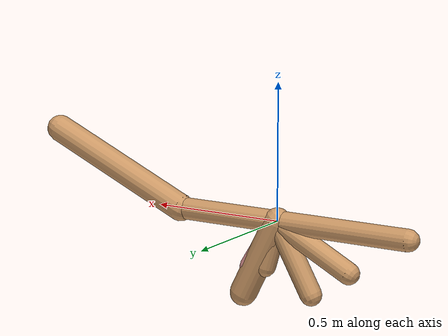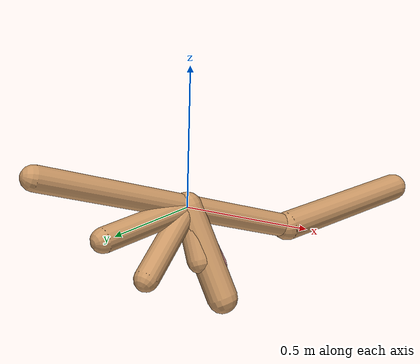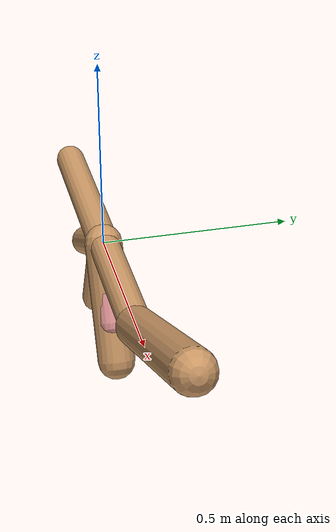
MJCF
<!-- converted to geom fromto version -->
<mujoco model="cheetah">
  <compiler angle="degree" coordinate="global" inertiafromgeom="true"/>
  <default>
    <joint armature=".1" damping=".01" limited="true" solimplimit="0 .8 .03" solreflimit=".02 1" stiffness="8"/>
    <geom conaffinity="0" condim="3" contype="1" friction="0.8 .1 .1" rgba="0.8 0.6 .4 1" solimp="0.0 0.8 0.01" solref="0.02 1"/>
    <motor ctrllimited="true" ctrlrange="-1 1"/>
  </default>
  <size nstack="300000" nuser_geom="1"/>
  <option gravity="0 0 -9.81" timestep="0.01"/>
  <worldbody>
    <body name="torso" pos="0 0 0.78">
      <joint armature="0" axis="1 0 0" damping="0" limited="false" name="ignorex" pos="0 0 0" stiffness="0" type="slide"/>
      <joint armature="0" axis="0 0 1" damping="0" limited="false" name="ignorez" pos="0 0 0" stiffness="0" type="slide"/>
      <joint armature="0" axis="0 1 0" damping="0" limited="false" name="ignorey" pos="0 0 0" stiffness="0" type="hinge"/>
      <geom fromto="-0.52 0 0 0.41 0 0" name="torso" size="0.04" type="capsule"/>
      <geom fromto="0.41 0 0 0.95 0 0.24" name="head" size="0.05" type="capsule"/>
      <body name="bthigh" pos="-0.52 0 0">
        <joint axis="0 1 0" damping="6" name="bthigh" pos="0 0 0" range="-30 60" stiffness="240" type="hinge"/>
        <geom fromto="0 0 0 0.14 0 -0.28" size="0.05" type="capsule"/>
        <body name="bshin" pos="0.14 0 -0.28">
          <joint axis="0 1 0" damping="4.5" name="bshin" pos="0 0 0" range="-45 45" stiffness="180" type="hinge"/>
          <geom fromto="0 0 0 -0.29 0 -0.15" size="0.04" type="capsule"/>
          <body name="bfoot" pos="-0.29 0 -0.15">
            <joint axis="0 1 0" damping="3" name="bfoot" pos="0 0 0" range="23 45" stiffness="120" type="hinge"/>
            <geom fromto="0 0 0 0.05 0 -0.17" size="0.04" type="capsule"/>
          </body>
        </body>
      </body>
      <body name="fthigh" pos="0.41 0 0">
        <joint axis="0 1 0" damping="4.5" name="fthigh" pos="0 0 0" range="-86 45" stiffness="180" type="hinge"/>
        <geom fromto="0 0 0 -0.14 0 -0.25" name="fthigh" size="0.04" type="capsule"/>
        <body name="fshin" pos="-0.14 0 -0.25">
          <joint axis="0 1 0" damping="3" name="fshin" pos="0 0 0" range="-69 63" stiffness="120" type="hinge"/>
          <geom fromto="0 0 0 0.11 0 -0.18" name="fshin" rgba="0.9 0.6 0.6 1" size="0.04" type="capsule"/>
          <body name="ffoot" pos="0.11 0 -0.18">
            <joint axis="0 1 0" damping="1.5" name="ffoot" pos="0 0 0" range="-177 -17" stiffness="60" type="hinge"/>
            <geom fromto="0 0 0 0.11 0 -0.2" name="ffoot" rgba="0.9 0.6 0.6 1" size="0.04" type="capsule"/>
          </body>
        </body>
      </body>
    </body>
  </worldbody>
  <actuator>
    <motor gear="120" joint="bthigh" name="bthigh"/>
    <motor gear="90" joint="bshin" name="bshin"/>
    <motor gear="60" joint="bfoot" name="bfoot"/>
    <motor gear="120" joint="fthigh" name="fthigh"/>
    <motor gear="60" joint="fshin" name="fshin"/>
    <motor gear="30" joint="ffoot" name="ffoot"/>
  </actuator>
</mujoco>
